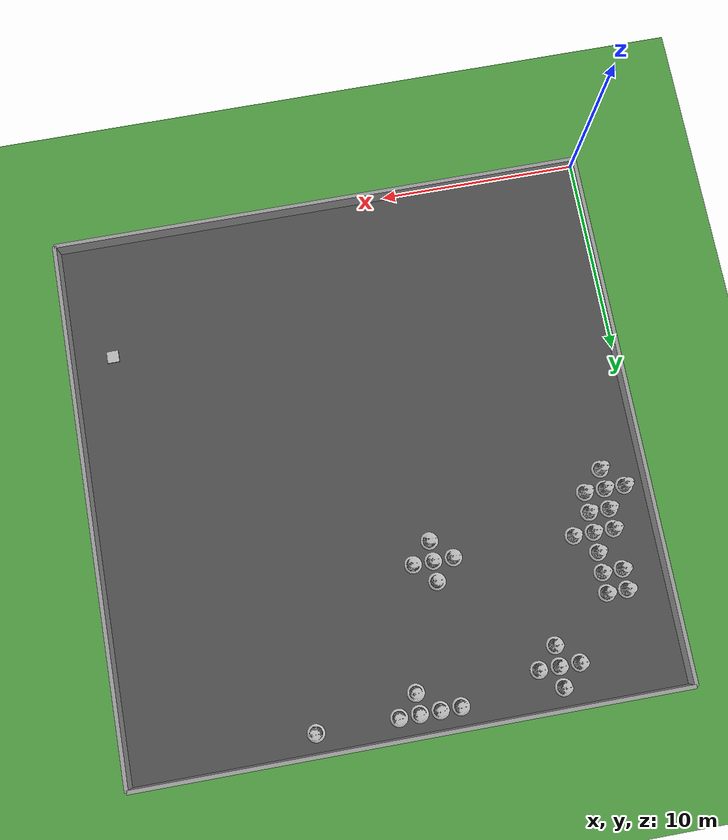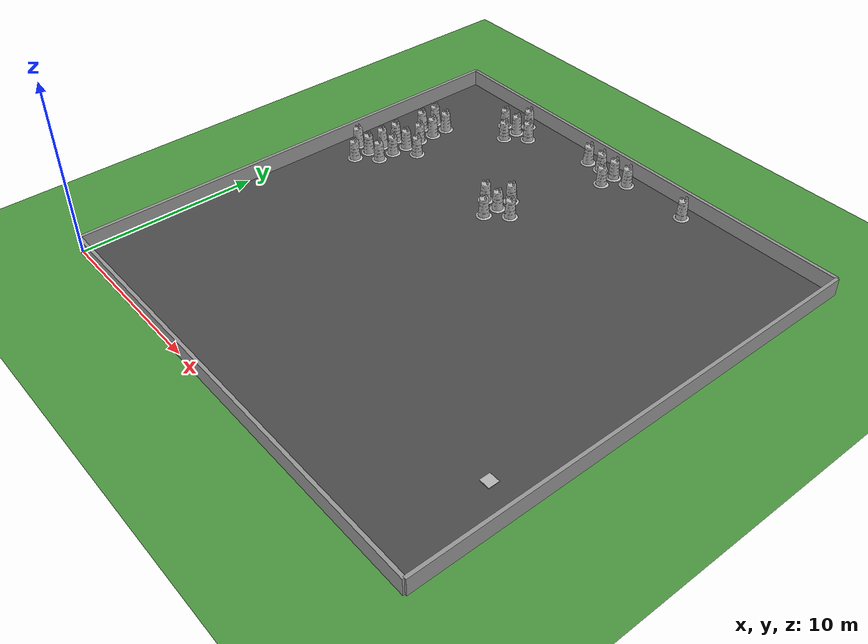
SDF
<sdf version="1.4">
 <world name="default">
  <model name="vrc_driving_terrain">
   <static>1</static>
   <link name="grass_plane">
    <visual name="visual_0">
     <cast_shadows>0</cast_shadows>
     <geometry><plane><normal>0 0 1</normal><size>150 150</size></plane></geometry>
     <material>
      <script>
       <uri>model://vrc_driving_terrain/materials/scripts</uri>
       <uri>model://vrc_driving_terrain/materials/textures</uri>
       <name>vrc/grass</name>
      </script>
     </material>
    </visual>
   </link>
   <pose>0 0 0.01 0 -0 0</pose>
  </model>
  <include><uri>model://ground_plane</uri></include>
  <include><uri>model://sun</uri></include>
  <plugin filename="librotors_gazebo_ros_interface_plugin.so" name="ros_interface_plugin"/>
  <spherical_coordinates>
   <surface_model>EARTH_WGS84</surface_model>
   <latitude_deg>47.3667</latitude_deg>
   <longitude_deg>8.5500</longitude_deg>
   <elevation>500.0</elevation>
   <heading_deg>0</heading_deg>
  </spherical_coordinates>
  <physics type="ode">
   <ode>
    <solver><type>quick</type><iters>1000</iters><sor>1.3</sor></solver>
    <constraints>
     <cfm>0</cfm>
     <erp>0.2</erp>
     <contact_max_correcting_vel>100</contact_max_correcting_vel>
     <contact_surface_layer>0.001</contact_surface_layer>
    </constraints>
   </ode>
   <max_step_size>0.01</max_step_size>
   <real_time_factor>1</real_time_factor>
   <real_time_update_rate>100</real_time_update_rate>
   <gravity>0 0 -9.8</gravity>
  </physics>
  <model name="box_target_green">
   <static>1</static>
   <link name="link">
    <pose>25 6 0 0 0 0</pose>
    <collision name="collision"><geometry><box><size>6 6 2</size></box></geometry></collision>
    <visual name="visual">
     <geometry>
      <mesh><uri>model://box_target_green/meshes/mesh.dae</uri><scale>0.1 0.1 0.1</scale></mesh>
     </geometry>
    </visual>
   </link>
  </model>
  <model name="grey_wall">
   <static>1</static>
   <link name="link">
    <visual name="visual">
     <cast_shadows>0</cast_shadows>
     <geometry><box><size>27 0.2 2</size></box></geometry>
     <material>
      <script>
       <uri>model://grey_wall/materials/scripts</uri>
       <uri>model://grey_wall/materials/textures</uri>
       <name>vrc/grey_wall</name>
      </script>
     </material>
    </visual>
   </link>
   <pose>13.5 0 0 0 0 0</pose>
  </model>
  <model name="grey_wall">
   <static>1</static>
   <link name="link">
    <visual name="visual">
     <cast_shadows>0</cast_shadows>
     <geometry><box><size>27 0.2 2</size></box></geometry>
     <material>
      <script>
       <uri>model://grey_wall/materials/scripts</uri>
       <uri>model://grey_wall/materials/textures</uri>
       <name>vrc/grey_wall</name>
      </script>
     </material>
    </visual>
   </link>
   <pose>0 13.5 0 0 0 1.57079632679</pose>
  </model>
  <model name="grey_wall">
   <static>1</static>
   <link name="link">
    <visual name="visual">
     <cast_shadows>0</cast_shadows>
     <geometry><box><size>27 0.2 2</size></box></geometry>
     <material>
      <script>
       <uri>model://grey_wall/materials/scripts</uri>
       <uri>model://grey_wall/materials/textures</uri>
       <name>vrc/grey_wall</name>
      </script>
     </material>
    </visual>
   </link>
   <pose>27 13.5 0 0 0 -1.57079632679</pose>
  </model>
  <model name="grey_wall">
   <static>1</static>
   <link name="link">
    <visual name="visual">
     <cast_shadows>0</cast_shadows>
     <geometry><box><size>27 0.2 2</size></box></geometry>
     <material>
      <script>
       <uri>model://grey_wall/materials/scripts</uri>
       <uri>model://grey_wall/materials/textures</uri>
       <name>vrc/grey_wall</name>
      </script>
     </material>
    </visual>
   </link>
   <pose>13.5 27 0 0 0 3.14159265359</pose>
  </model>
  <model name="asphalt_plane">
   <static>1</static>
   <link name="link">
    <visual name="visual">
     <cast_shadows>0</cast_shadows>
     <geometry><box><size>27 27 0.1</size></box></geometry>
     <material>
      <script>
       <uri>model://asphalt_plane/materials/scripts</uri>
       <uri>model://asphalt_plane/materials/textures</uri>
       <name>vrc/asphalt</name>
      </script>
     </material>
    </visual>
   </link>
   <pose>13.5 13.5 0 0 0 0</pose>
  </model>
  <model name="Construction Barrel">
   <link name="link">
    <collision name="collision">
     <geometry>
      <mesh><uri>model://construction_barrel/meshes/construction_barrel.dae</uri><scale>1 1 1</scale></mesh>
     </geometry>
    </collision>
    <visual name="visual">
     <geometry><mesh><uri>model://construction_barrel/meshes/construction_barrel.dae</uri></mesh></geometry>
    </visual>
   </link>
   <pose>1 17 0 0 0 0</pose>
   <static>1</static>
  </model>
  <model name="Construction Barrel">
   <link name="link">
    <collision name="collision">
     <geometry>
      <mesh><uri>model://construction_barrel/meshes/construction_barrel.dae</uri><scale>1 1 1</scale></mesh>
     </geometry>
    </collision>
    <visual name="visual">
     <geometry><mesh><uri>model://construction_barrel/meshes/construction_barrel.dae</uri></mesh></geometry>
    </visual>
   </link>
   <pose>2 16 0 0 0 0</pose>
   <static>1</static>
  </model>
  <model name="Construction Barrel">
   <link name="link">
    <collision name="collision">
     <geometry>
      <mesh><uri>model://construction_barrel/meshes/construction_barrel.dae</uri><scale>1 1 1</scale></mesh>
     </geometry>
    </collision>
    <visual name="visual">
     <geometry><mesh><uri>model://construction_barrel/meshes/construction_barrel.dae</uri></mesh></geometry>
    </visual>
   </link>
   <pose>2 17 0 0 0 0</pose>
   <static>1</static>
  </model>
  <model name="Construction Barrel">
   <link name="link">
    <collision name="collision">
     <geometry>
      <mesh><uri>model://construction_barrel/meshes/construction_barrel.dae</uri><scale>1 1 1</scale></mesh>
     </geometry>
    </collision>
    <visual name="visual">
     <geometry><mesh><uri>model://construction_barrel/meshes/construction_barrel.dae</uri></mesh></geometry>
    </visual>
   </link>
   <pose>2 18 0 0 0 0</pose>
   <static>1</static>
  </model>
  <model name="Construction Barrel">
   <link name="link">
    <collision name="collision">
     <geometry>
      <mesh><uri>model://construction_barrel/meshes/construction_barrel.dae</uri><scale>1 1 1</scale></mesh>
     </geometry>
    </collision>
    <visual name="visual">
     <geometry><mesh><uri>model://construction_barrel/meshes/construction_barrel.dae</uri></mesh></geometry>
    </visual>
   </link>
   <pose>2 19 0 0 0 0</pose>
   <static>1</static>
  </model>
  <model name="Construction Barrel">
   <link name="link">
    <collision name="collision">
     <geometry>
      <mesh><uri>model://construction_barrel/meshes/construction_barrel.dae</uri><scale>1 1 1</scale></mesh>
     </geometry>
    </collision>
    <visual name="visual">
     <geometry><mesh><uri>model://construction_barrel/meshes/construction_barrel.dae</uri></mesh></geometry>
    </visual>
   </link>
   <pose>2 21 0 0 0 0</pose>
   <static>1</static>
  </model>
  <model name="Construction Barrel">
   <link name="link">
    <collision name="collision">
     <geometry>
      <mesh><uri>model://construction_barrel/meshes/construction_barrel.dae</uri><scale>1 1 1</scale></mesh>
     </geometry>
    </collision>
    <visual name="visual">
     <geometry><mesh><uri>model://construction_barrel/meshes/construction_barrel.dae</uri></mesh></geometry>
    </visual>
   </link>
   <pose>2 22 0 0 0 0</pose>
   <static>1</static>
  </model>
  <model name="Construction Barrel">
   <link name="link">
    <collision name="collision">
     <geometry>
      <mesh><uri>model://construction_barrel/meshes/construction_barrel.dae</uri><scale>1 1 1</scale></mesh>
     </geometry>
    </collision>
    <visual name="visual">
     <geometry><mesh><uri>model://construction_barrel/meshes/construction_barrel.dae</uri></mesh></geometry>
    </visual>
   </link>
   <pose>3 17 0 0 0 0</pose>
   <static>1</static>
  </model>
  <model name="Construction Barrel">
   <link name="link">
    <collision name="collision">
     <geometry>
      <mesh><uri>model://construction_barrel/meshes/construction_barrel.dae</uri><scale>1 1 1</scale></mesh>
     </geometry>
    </collision>
    <visual name="visual">
     <geometry><mesh><uri>model://construction_barrel/meshes/construction_barrel.dae</uri></mesh></geometry>
    </visual>
   </link>
   <pose>3 18 0 0 0 0</pose>
   <static>1</static>
  </model>
  <model name="Construction Barrel">
   <link name="link">
    <collision name="collision">
     <geometry>
      <mesh><uri>model://construction_barrel/meshes/construction_barrel.dae</uri><scale>1 1 1</scale></mesh>
     </geometry>
    </collision>
    <visual name="visual">
     <geometry><mesh><uri>model://construction_barrel/meshes/construction_barrel.dae</uri></mesh></geometry>
    </visual>
   </link>
   <pose>3 19 0 0 0 0</pose>
   <static>1</static>
  </model>
  <model name="Construction Barrel">
   <link name="link">
    <collision name="collision">
     <geometry>
      <mesh><uri>model://construction_barrel/meshes/construction_barrel.dae</uri><scale>1 1 1</scale></mesh>
     </geometry>
    </collision>
    <visual name="visual">
     <geometry><mesh><uri>model://construction_barrel/meshes/construction_barrel.dae</uri></mesh></geometry>
    </visual>
   </link>
   <pose>3 20 0 0 0 0</pose>
   <static>1</static>
  </model>
  <model name="Construction Barrel">
   <link name="link">
    <collision name="collision">
     <geometry>
      <mesh><uri>model://construction_barrel/meshes/construction_barrel.dae</uri><scale>1 1 1</scale></mesh>
     </geometry>
    </collision>
    <visual name="visual">
     <geometry><mesh><uri>model://construction_barrel/meshes/construction_barrel.dae</uri></mesh></geometry>
    </visual>
   </link>
   <pose>3 21 0 0 0 0</pose>
   <static>1</static>
  </model>
  <model name="Construction Barrel">
   <link name="link">
    <collision name="collision">
     <geometry>
      <mesh><uri>model://construction_barrel/meshes/construction_barrel.dae</uri><scale>1 1 1</scale></mesh>
     </geometry>
    </collision>
    <visual name="visual">
     <geometry><mesh><uri>model://construction_barrel/meshes/construction_barrel.dae</uri></mesh></geometry>
    </visual>
   </link>
   <pose>3 22 0 0 0 0</pose>
   <static>1</static>
  </model>
  <model name="Construction Barrel">
   <link name="link">
    <collision name="collision">
     <geometry>
      <mesh><uri>model://construction_barrel/meshes/construction_barrel.dae</uri><scale>1 1 1</scale></mesh>
     </geometry>
    </collision>
    <visual name="visual">
     <geometry><mesh><uri>model://construction_barrel/meshes/construction_barrel.dae</uri></mesh></geometry>
    </visual>
   </link>
   <pose>4 19 0 0 0 0</pose>
   <static>1</static>
  </model>
  <model name="Construction Barrel">
   <link name="link">
    <collision name="collision">
     <geometry>
      <mesh><uri>model://construction_barrel/meshes/construction_barrel.dae</uri><scale>1 1 1</scale></mesh>
     </geometry>
    </collision>
    <visual name="visual">
     <geometry><mesh><uri>model://construction_barrel/meshes/construction_barrel.dae</uri></mesh></geometry>
    </visual>
   </link>
   <pose>5 25 0 0 0 0</pose>
   <static>1</static>
  </model>
  <model name="Construction Barrel">
   <link name="link">
    <collision name="collision">
     <geometry>
      <mesh><uri>model://construction_barrel/meshes/construction_barrel.dae</uri><scale>1 1 1</scale></mesh>
     </geometry>
    </collision>
    <visual name="visual">
     <geometry><mesh><uri>model://construction_barrel/meshes/construction_barrel.dae</uri></mesh></geometry>
    </visual>
   </link>
   <pose>6 24 0 0 0 0</pose>
   <static>1</static>
  </model>
  <model name="Construction Barrel">
   <link name="link">
    <collision name="collision">
     <geometry>
      <mesh><uri>model://construction_barrel/meshes/construction_barrel.dae</uri><scale>1 1 1</scale></mesh>
     </geometry>
    </collision>
    <visual name="visual">
     <geometry><mesh><uri>model://construction_barrel/meshes/construction_barrel.dae</uri></mesh></geometry>
    </visual>
   </link>
   <pose>6 25 0 0 0 0</pose>
   <static>1</static>
  </model>
  <model name="Construction Barrel">
   <link name="link">
    <collision name="collision">
     <geometry>
      <mesh><uri>model://construction_barrel/meshes/construction_barrel.dae</uri><scale>1 1 1</scale></mesh>
     </geometry>
    </collision>
    <visual name="visual">
     <geometry><mesh><uri>model://construction_barrel/meshes/construction_barrel.dae</uri></mesh></geometry>
    </visual>
   </link>
   <pose>6 26 0 0 0 0</pose>
   <static>1</static>
  </model>
  <model name="Construction Barrel">
   <link name="link">
    <collision name="collision">
     <geometry>
      <mesh><uri>model://construction_barrel/meshes/construction_barrel.dae</uri><scale>1 1 1</scale></mesh>
     </geometry>
    </collision>
    <visual name="visual">
     <geometry><mesh><uri>model://construction_barrel/meshes/construction_barrel.dae</uri></mesh></geometry>
    </visual>
   </link>
   <pose>7 25 0 0 0 0</pose>
   <static>1</static>
  </model>
  <model name="Construction Barrel">
   <link name="link">
    <collision name="collision">
     <geometry>
      <mesh><uri>model://construction_barrel/meshes/construction_barrel.dae</uri><scale>1 1 1</scale></mesh>
     </geometry>
    </collision>
    <visual name="visual">
     <geometry><mesh><uri>model://construction_barrel/meshes/construction_barrel.dae</uri></mesh></geometry>
    </visual>
   </link>
   <pose>10 19 0 0 0 0</pose>
   <static>1</static>
  </model>
  <model name="Construction Barrel">
   <link name="link">
    <collision name="collision">
     <geometry>
      <mesh><uri>model://construction_barrel/meshes/construction_barrel.dae</uri><scale>1 1 1</scale></mesh>
     </geometry>
    </collision>
    <visual name="visual">
     <geometry><mesh><uri>model://construction_barrel/meshes/construction_barrel.dae</uri></mesh></geometry>
    </visual>
   </link>
   <pose>11 18 0 0 0 0</pose>
   <static>1</static>
  </model>
  <model name="Construction Barrel">
   <link name="link">
    <collision name="collision">
     <geometry>
      <mesh><uri>model://construction_barrel/meshes/construction_barrel.dae</uri><scale>1 1 1</scale></mesh>
     </geometry>
    </collision>
    <visual name="visual">
     <geometry><mesh><uri>model://construction_barrel/meshes/construction_barrel.dae</uri></mesh></geometry>
    </visual>
   </link>
   <pose>11 19 0 0 0 0</pose>
   <static>1</static>
  </model>
  <model name="Construction Barrel">
   <link name="link">
    <collision name="collision">
     <geometry>
      <mesh><uri>model://construction_barrel/meshes/construction_barrel.dae</uri><scale>1 1 1</scale></mesh>
     </geometry>
    </collision>
    <visual name="visual">
     <geometry><mesh><uri>model://construction_barrel/meshes/construction_barrel.dae</uri></mesh></geometry>
    </visual>
   </link>
   <pose>11 20 0 0 0 0</pose>
   <static>1</static>
  </model>
  <model name="Construction Barrel">
   <link name="link">
    <collision name="collision">
     <geometry>
      <mesh><uri>model://construction_barrel/meshes/construction_barrel.dae</uri><scale>1 1 1</scale></mesh>
     </geometry>
    </collision>
    <visual name="visual">
     <geometry><mesh><uri>model://construction_barrel/meshes/construction_barrel.dae</uri></mesh></geometry>
    </visual>
   </link>
   <pose>11 26 0 0 0 0</pose>
   <static>1</static>
  </model>
  <model name="Construction Barrel">
   <link name="link">
    <collision name="collision">
     <geometry>
      <mesh><uri>model://construction_barrel/meshes/construction_barrel.dae</uri><scale>1 1 1</scale></mesh>
     </geometry>
    </collision>
    <visual name="visual">
     <geometry><mesh><uri>model://construction_barrel/meshes/construction_barrel.dae</uri></mesh></geometry>
    </visual>
   </link>
   <pose>12 19 0 0 0 0</pose>
   <static>1</static>
  </model>
  <model name="Construction Barrel">
   <link name="link">
    <collision name="collision">
     <geometry>
      <mesh><uri>model://construction_barrel/meshes/construction_barrel.dae</uri><scale>1 1 1</scale></mesh>
     </geometry>
    </collision>
    <visual name="visual">
     <geometry><mesh><uri>model://construction_barrel/meshes/construction_barrel.dae</uri></mesh></geometry>
    </visual>
   </link>
   <pose>12 26 0 0 0 0</pose>
   <static>1</static>
  </model>
  <model name="Construction Barrel">
   <link name="link">
    <collision name="collision">
     <geometry>
      <mesh><uri>model://construction_barrel/meshes/construction_barrel.dae</uri><scale>1 1 1</scale></mesh>
     </geometry>
    </collision>
    <visual name="visual">
     <geometry><mesh><uri>model://construction_barrel/meshes/construction_barrel.dae</uri></mesh></geometry>
    </visual>
   </link>
   <pose>13 25 0 0 0 0</pose>
   <static>1</static>
  </model>
  <model name="Construction Barrel">
   <link name="link">
    <collision name="collision">
     <geometry>
      <mesh><uri>model://construction_barrel/meshes/construction_barrel.dae</uri><scale>1 1 1</scale></mesh>
     </geometry>
    </collision>
    <visual name="visual">
     <geometry><mesh><uri>model://construction_barrel/meshes/construction_barrel.dae</uri></mesh></geometry>
    </visual>
   </link>
   <pose>13 26 0 0 0 0</pose>
   <static>1</static>
  </model>
  <model name="Construction Barrel">
   <link name="link">
    <collision name="collision">
     <geometry>
      <mesh><uri>model://construction_barrel/meshes/construction_barrel.dae</uri><scale>1 1 1</scale></mesh>
     </geometry>
    </collision>
    <visual name="visual">
     <geometry><mesh><uri>model://construction_barrel/meshes/construction_barrel.dae</uri></mesh></geometry>
    </visual>
   </link>
   <pose>14 26 0 0 0 0</pose>
   <static>1</static>
  </model>
  <model name="Construction Barrel">
   <link name="link">
    <collision name="collision">
     <geometry>
      <mesh><uri>model://construction_barrel/meshes/construction_barrel.dae</uri><scale>1 1 1</scale></mesh>
     </geometry>
    </collision>
    <visual name="visual">
     <geometry><mesh><uri>model://construction_barrel/meshes/construction_barrel.dae</uri></mesh></geometry>
    </visual>
   </link>
   <pose>18 26 0 0 0 0</pose>
   <static>1</static>
  </model>
 </world>
</sdf>
